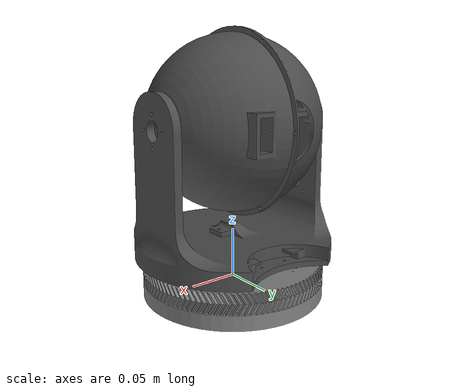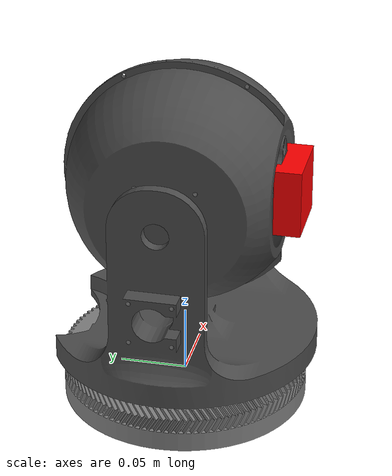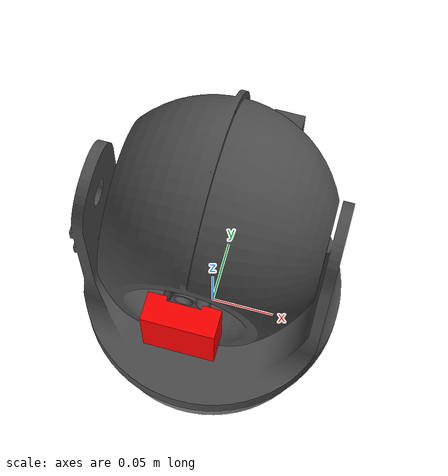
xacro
<?xml version="1.0"?>
<robot xmlns:xacro="http://www.ros.org/wiki/xacro" name="wiezyczka_pan_tilt">

  <link name="dummy_root"/>
  <joint name="fixed_to_dummy" type="fixed">
    <parent link="dummy_root"/>
    <child link="base_link"/>
  </joint>

  <xacro:macro name="dummy_inertia">
    <inertial>
      <mass value="0.1"/>
      <inertia ixx="0.001" ixy="0" ixz="0" iyy="0.001" iyz="0" izz="0.001"/>
    </inertial>
  </xacro:macro>

  <link name="base_link">
    <visual>
      <origin xyz="0 0 0" rpy="0 0 0"/>
      <geometry>
        <mesh filename="file://$(find pan_tilt_description)/meshes/base.stl" scale="0.001 0.001 0.001" />
      </geometry>
      <material name="gray"><color rgba="0.5 0.5 0.5 1.0"/></material>
    </visual>
    <collision>
      <geometry><box size="0.1 0.1 0.1"/></geometry>
    </collision>
    <xacro:dummy_inertia/>
  </link>

  <joint name="pan_joint" type="revolute">
    <parent link="base_link"/>
    <child link="pan_link"/>
    <origin xyz="0 0 0.04" rpy="0 0 0"/>
    <axis xyz="0 0 1"/>
    <limit lower="-3.14" upper="3.14" effort="10.0" velocity="1.0"/>
    <dynamics damping="1.0" friction="1.0"/> </joint>

  <link name="pan_link">
    <visual>
      <origin xyz="0 0 0" rpy="0 0 0"/>
      <geometry>
        <mesh filename="file://$(find pan_tilt_description)/meshes/pan_link.stl" scale="0.001 0.001 0.001" />
      </geometry>
      <material name="dark_gray"><color rgba="0.3 0.3 0.3 1.0"/></material>
    </visual>
    <collision>
      <geometry><cylinder radius="0.05" length="0.1"/></geometry>
    </collision>
    <xacro:dummy_inertia/>
  </link>

  <joint name="tilt_joint" type="revolute">
    <parent link="pan_link"/>
    <child link="tilt_link"/>
    <origin xyz="0.01 0 0.12" rpy="0 0 3.14159"/>
    <axis xyz="1 0 0"/>
    <limit lower="-1.57" upper="1.57" effort="10.0" velocity="1.0"/>
    <dynamics damping="1.0" friction="1.0"/> </joint>

  <link name="tilt_link">
    <visual>
      <origin xyz="0 0 0" rpy="0 0 0"/>
      <geometry>
        <mesh filename="file://$(find pan_tilt_description)/meshes/tilt_link.stl" scale="0.001 0.001 0.001" />
      </geometry>
      <material name="dark_gray"><color rgba="0.3 0.3 0.3 1.0"/></material>
    </visual>
    <collision>
      <geometry><cylinder radius="0.05" length="0.1"/></geometry>
    </collision>
    <xacro:dummy_inertia/>
  </link>

  <joint name="camera_joint" type="fixed">
    <origin xyz="0.01 0.08 0" rpy="0 0 1.57075"/>
    <parent link="tilt_link"/>
    <child link="camera_link"/>
  </joint>

  <link name="camera_link">
    <visual>
      <geometry>
        <box size="0.02 0.05 0.05"/>
      </geometry>
      <material name="red"><color rgba="1.0 0.0 0.0 1.0"/></material>
    </visual>
    <inertial>
      <mass value="0.0001"/>
      <inertia ixx="0.000001" ixy="0" ixz="0" iyy="0.000001" iyz="0" izz="0.000001"/>
    </inertial>
  </link>

  <gazebo reference="camera_joint">
    <disableFixedJointLumping>true</disableFixedJointLumping>
  </gazebo>

  <gazebo reference="base_link">
    <material>Gazebo/Grey</material>
  </gazebo>
  <gazebo reference="pan_link">
    <material>Gazebo/DarkGrey</material>
  </gazebo>
  <gazebo reference="tilt_link">
    <material>Gazebo/DarkGrey</material>
  </gazebo>

  <gazebo reference="camera_link">
    <material>Gazebo/Red</material>
    <sensor name="main_camera" type="camera">
      <camera>
        <horizontal_fov>1.396</horizontal_fov>
        <image>
          <width>640</width>
          <height>480</height>
          <format>R8G8B8</format>
        </image>
        <clip>
          <near>0.02</near>
          <far>100.0</far>
        </clip>
      </camera>
      <always_on>1</always_on>
      <update_rate>30</update_rate>
      <visualize>true</visualize>
      <topic>camera/image_raw</topic>
    </sensor>
  </gazebo>

  <gazebo>
    <plugin filename="libignition-gazebo-joint-position-controller-system.so"
            name="ignition::gazebo::systems::JointPositionController">
      <joint_name>pan_joint</joint_name>
      <topic>model/pan_tilt_turret/joint/pan_joint/cmd_pos</topic>
      <p_gain>5.0</p_gain>
      <i_gain>0.1</i_gain>
      <d_gain>0.5</d_gain>
    </plugin>
  </gazebo>

  <gazebo>
    <plugin filename="libignition-gazebo-joint-position-controller-system.so"
            name="ignition::gazebo::systems::JointPositionController">
      <joint_name>tilt_joint</joint_name>
      <topic>model/pan_tilt_turret/joint/tilt_joint/cmd_pos</topic>
      <p_gain>5.0</p_gain>
      <i_gain>0.1</i_gain>
      <d_gain>0.5</d_gain>
    </plugin>
  </gazebo>

</robot>
